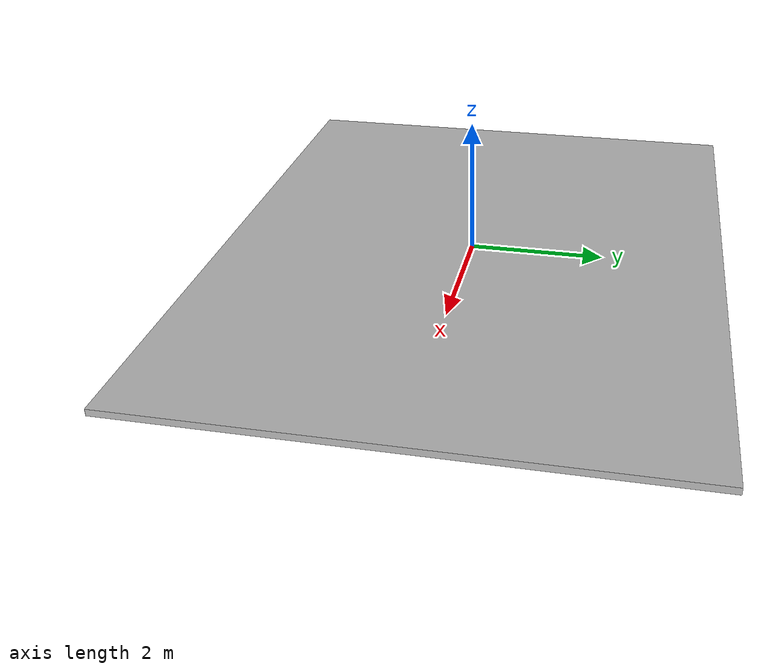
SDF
<?xml version='1.0'?>
<sdf version='1.6'>
  <model name='AL301'>
    <link name='link'>
      <!-- Visual -->
      <visual name='visual'>
        <geometry>
          <mesh>
            <uri>model://new_arena/arena.dae</uri>
          </mesh>
        </geometry>
      </visual>

      <!-- Collision -->
      <collision name='collision'>
        <geometry>
          <mesh>
            <uri>model://new_arena/arena.dae</uri>
          </mesh>
        </geometry>
      </collision>

    </link>
  </model>
</sdf>
